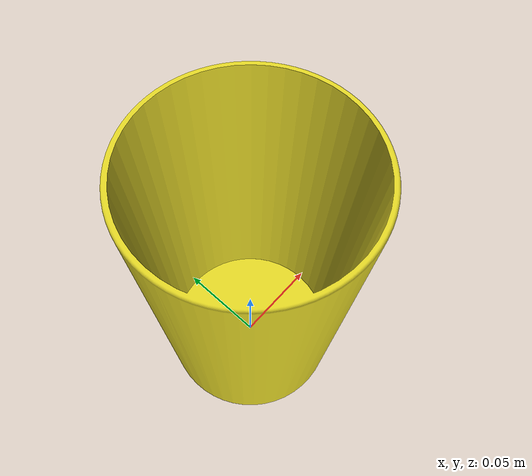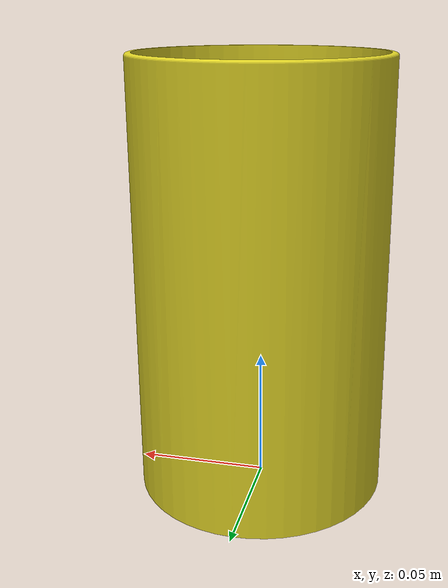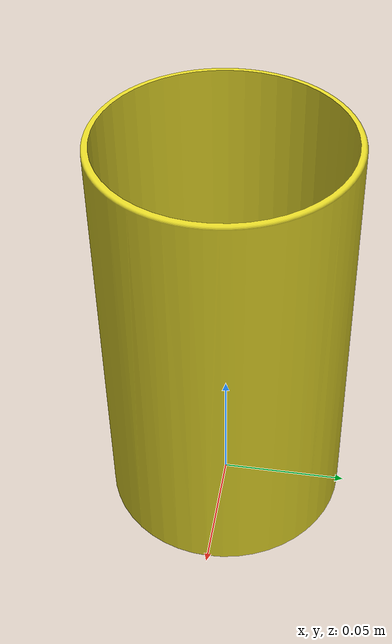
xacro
<?xml version="1.0"?>
<robot xmlns:xacro="http://www.ros.org/wiki/xacro" name="cup" >

	<xacro:include filename="$(find schunk_description)/urdf/table/cup.gazebo.xacro" />
	<link name="cup">
 		<inertial>
			<origin xyz="0 0 0" rpy="0 0 0" />
			<mass value="0.05"/>
			<inertia ixx="0.0001" ixy="0" ixz="0" iyy="0.0001" iyz="0" izz="0.0001" />
		</inertial>

		<visual>
			<origin xyz="0 0 0" rpy="0 0 0" />
				<geometry>
					<mesh filename="package://schunk_description/meshes/table/cup.dae" />
				</geometry>
		</visual>

		<collision>
			<origin xyz="0 0 0" rpy="0 0 0" />
				<geometry>
					<mesh filename="package://schunk_description/meshes/table/cup.dae" />
				</geometry>
		</collision>
	</link>

</robot>
